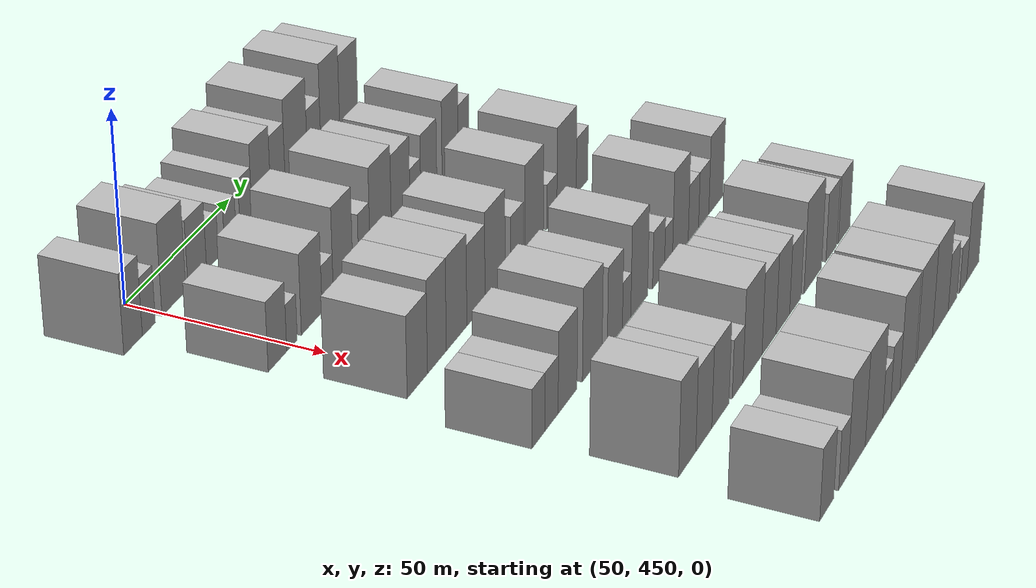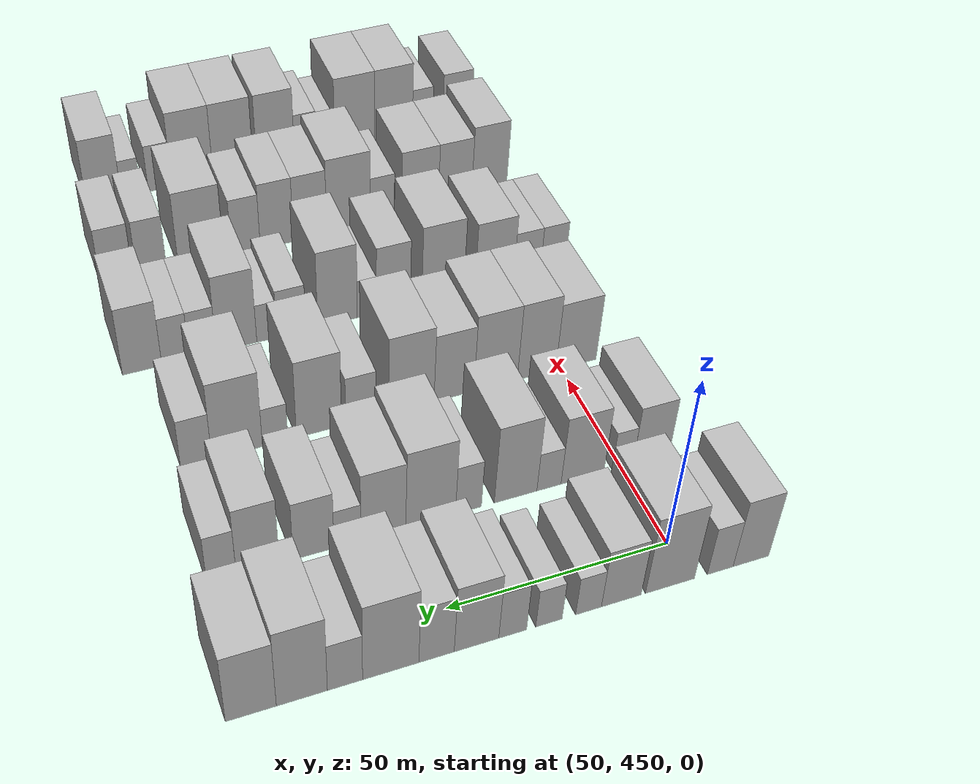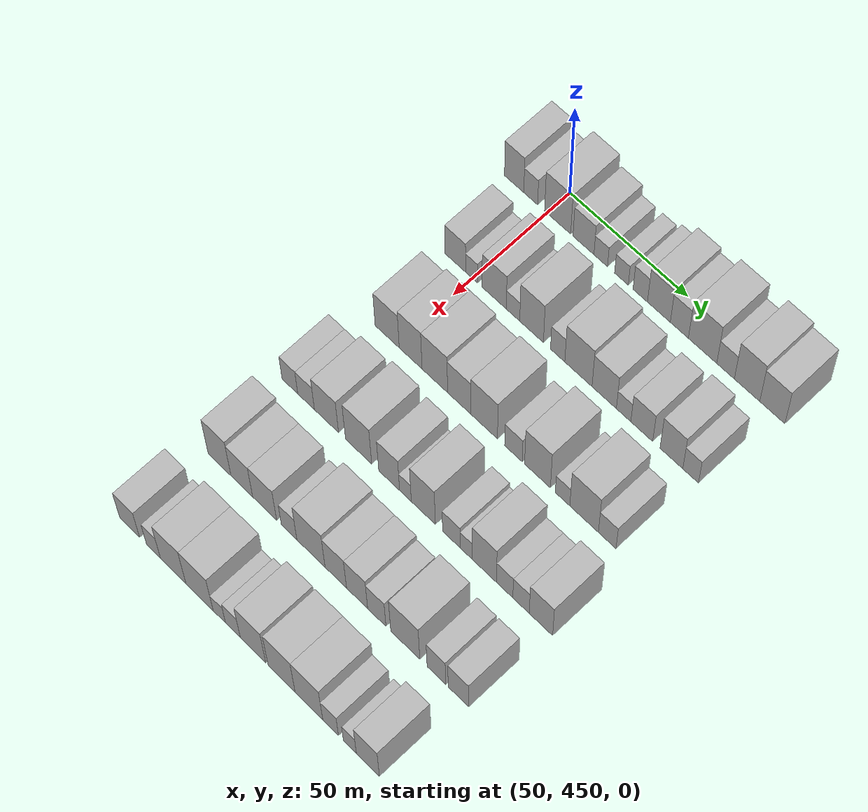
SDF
<sdf version="1.6">
 <world name="default">
  <model name="building_107">
   <static>1</static>
   <pose>50.0000 435.6473 0 0.000000 0.000000 0.000000</pose>
   <link name="link">
    <pose>0 0 10.50 0 0 0</pose>
    <collision name="collision"><geometry><box><size>20.0000 8.4114 21.0000</size></box></geometry></collision>
    <visual name="visual">
     <cast_shadows>0</cast_shadows>
     <geometry><box><size>20.0000 8.4114 21.0000</size></box></geometry>
     <material>
      <script>
       <uri>model://HANNAS_wall/materials/scripts</uri>
       <uri>model://HANNAS_wall/materials/textures</uri>
       <name>vrc/HANNAS_wall</name>
      </script>
     </material>
    </visual>
   </link>
  </model>
  <model name="building_108">
   <static>1</static>
   <pose>50.0000 442.8544 0 0.000000 0.000000 0.000000</pose>
   <link name="link">
    <pose>0 0 7.50 0 0 0</pose>
    <collision name="collision"><geometry><box><size>20.0000 6.0029 15.0000</size></box></geometry></collision>
    <visual name="visual">
     <cast_shadows>0</cast_shadows>
     <geometry><box><size>20.0000 6.0029 15.0000</size></box></geometry>
     <material>
      <script>
       <uri>model://HANNAS_wall/materials/scripts</uri>
       <uri>model://HANNAS_wall/materials/textures</uri>
       <name>vrc/HANNAS_wall</name>
      </script>
     </material>
    </visual>
   </link>
  </model>
  <model name="building_109">
   <static>1</static>
   <pose>50.0000 454.4763 0 0.000000 0.000000 0.000000</pose>
   <link name="link">
    <pose>0 0 12.00 0 0 0</pose>
    <collision name="collision"><geometry><box><size>20.0000 11.2409 24.0000</size></box></geometry></collision>
    <visual name="visual">
     <cast_shadows>0</cast_shadows>
     <geometry><box><size>20.0000 11.2409 24.0000</size></box></geometry>
     <material>
      <script>
       <uri>model://HANNAS_wall/materials/scripts</uri>
       <uri>model://HANNAS_wall/materials/textures</uri>
       <name>vrc/HANNAS_wall</name>
      </script>
     </material>
    </visual>
   </link>
  </model>
  <model name="building_110">
   <static>1</static>
   <pose>50.0000 465.5707 0 0.000000 0.000000 0.000000</pose>
   <link name="link">
    <pose>0 0 9.00 0 0 0</pose>
    <collision name="collision"><geometry><box><size>20.0000 8.9480 18.0000</size></box></geometry></collision>
    <visual name="visual">
     <cast_shadows>0</cast_shadows>
     <geometry><box><size>20.0000 8.9480 18.0000</size></box></geometry>
     <material>
      <script>
       <uri>model://HANNAS_wall/materials/scripts</uri>
       <uri>model://HANNAS_wall/materials/textures</uri>
       <name>vrc/HANNAS_wall</name>
      </script>
     </material>
    </visual>
   </link>
  </model>
  <model name="building_111">
   <static>1</static>
   <pose>50.0000 472.9303 0 0.000000 0.000000 0.000000</pose>
   <link name="link">
    <pose>0 0 6.00 0 0 0</pose>
    <collision name="collision"><geometry><box><size>20.0000 5.7711 12.0000</size></box></geometry></collision>
    <visual name="visual">
     <cast_shadows>0</cast_shadows>
     <geometry><box><size>20.0000 5.7711 12.0000</size></box></geometry>
     <material>
      <script>
       <uri>model://HANNAS_wall/materials/scripts</uri>
       <uri>model://HANNAS_wall/materials/textures</uri>
       <name>vrc/HANNAS_wall</name>
      </script>
     </material>
    </visual>
   </link>
  </model>
  <model name="building_112">
   <static>1</static>
   <pose>50.0000 481.7112 0 0.000000 0.000000 0.000000</pose>
   <link name="link">
    <pose>0 0 6.00 0 0 0</pose>
    <collision name="collision"><geometry><box><size>20.0000 5.7907 12.0000</size></box></geometry></collision>
    <visual name="visual">
     <cast_shadows>0</cast_shadows>
     <geometry><box><size>20.0000 5.7907 12.0000</size></box></geometry>
     <material>
      <script>
       <uri>model://HANNAS_wall/materials/scripts</uri>
       <uri>model://HANNAS_wall/materials/textures</uri>
       <name>vrc/HANNAS_wall</name>
      </script>
     </material>
    </visual>
   </link>
  </model>
  <model name="building_113">
   <static>1</static>
   <pose>50.0000 489.6312 0 0.000000 0.000000 0.000000</pose>
   <link name="link">
    <pose>0 0 7.50 0 0 0</pose>
    <collision name="collision"><geometry><box><size>20.0000 6.0494 15.0000</size></box></geometry></collision>
    <visual name="visual">
     <cast_shadows>0</cast_shadows>
     <geometry><box><size>20.0000 6.0494 15.0000</size></box></geometry>
     <material>
      <script>
       <uri>model://HANNAS_wall/materials/scripts</uri>
       <uri>model://HANNAS_wall/materials/textures</uri>
       <name>vrc/HANNAS_wall</name>
      </script>
     </material>
    </visual>
   </link>
  </model>
  <model name="building_114">
   <static>1</static>
   <pose>50.0000 497.4347 0 0.000000 0.000000 0.000000</pose>
   <link name="link">
    <pose>0 0 10.50 0 0 0</pose>
    <collision name="collision"><geometry><box><size>20.0000 9.5577 21.0000</size></box></geometry></collision>
    <visual name="visual">
     <cast_shadows>0</cast_shadows>
     <geometry><box><size>20.0000 9.5577 21.0000</size></box></geometry>
     <material>
      <script>
       <uri>model://HANNAS_wall/materials/scripts</uri>
       <uri>model://HANNAS_wall/materials/textures</uri>
       <name>vrc/HANNAS_wall</name>
      </script>
     </material>
    </visual>
   </link>
  </model>
  <model name="building_115">
   <static>1</static>
   <pose>50.0000 505.9645 0 0.000000 0.000000 0.000000</pose>
   <link name="link">
    <pose>0 0 9.00 0 0 0</pose>
    <collision name="collision"><geometry><box><size>20.0000 7.5018 18.0000</size></box></geometry></collision>
    <visual name="visual">
     <cast_shadows>0</cast_shadows>
     <geometry><box><size>20.0000 7.5018 18.0000</size></box></geometry>
     <material>
      <script>
       <uri>model://HANNAS_wall/materials/scripts</uri>
       <uri>model://HANNAS_wall/materials/textures</uri>
       <name>vrc/HANNAS_wall</name>
      </script>
     </material>
    </visual>
   </link>
  </model>
  <model name="building_116">
   <static>1</static>
   <pose>50.0000 515.5728 0 0.000000 0.000000 0.000000</pose>
   <link name="link">
    <pose>0 0 12.00 0 0 0</pose>
    <collision name="collision"><geometry><box><size>20.0000 11.7149 24.0000</size></box></geometry></collision>
    <visual name="visual">
     <cast_shadows>0</cast_shadows>
     <geometry><box><size>20.0000 11.7149 24.0000</size></box></geometry>
     <material>
      <script>
       <uri>model://HANNAS_wall/materials/scripts</uri>
       <uri>model://HANNAS_wall/materials/textures</uri>
       <name>vrc/HANNAS_wall</name>
      </script>
     </material>
    </visual>
   </link>
  </model>
  <model name="building_117">
   <static>1</static>
   <pose>50.0000 525.0377 0 0.000000 0.000000 0.000000</pose>
   <link name="link">
    <pose>0 0 7.50 0 0 0</pose>
    <collision name="collision"><geometry><box><size>20.0000 7.2148 15.0000</size></box></geometry></collision>
    <visual name="visual">
     <cast_shadows>0</cast_shadows>
     <geometry><box><size>20.0000 7.2148 15.0000</size></box></geometry>
     <material>
      <script>
       <uri>model://HANNAS_wall/materials/scripts</uri>
       <uri>model://HANNAS_wall/materials/textures</uri>
       <name>vrc/HANNAS_wall</name>
      </script>
     </material>
    </visual>
   </link>
  </model>
  <model name="building_118">
   <static>1</static>
   <pose>50.0000 533.8089 0 0.000000 0.000000 0.000000</pose>
   <link name="link">
    <pose>0 0 12.00 0 0 0</pose>
    <collision name="collision"><geometry><box><size>20.0000 10.3277 24.0000</size></box></geometry></collision>
    <visual name="visual">
     <cast_shadows>0</cast_shadows>
     <geometry><box><size>20.0000 10.3277 24.0000</size></box></geometry>
     <material>
      <script>
       <uri>model://HANNAS_wall/materials/scripts</uri>
       <uri>model://HANNAS_wall/materials/textures</uri>
       <name>vrc/HANNAS_wall</name>
      </script>
     </material>
    </visual>
   </link>
  </model>
  <model name="building_119">
   <static>1</static>
   <pose>50.0000 544.0579 0 0.000000 0.000000 0.000000</pose>
   <link name="link">
    <pose>0 0 10.50 0 0 0</pose>
    <collision name="collision"><geometry><box><size>20.0000 10.1703 21.0000</size></box></geometry></collision>
    <visual name="visual">
     <cast_shadows>0</cast_shadows>
     <geometry><box><size>20.0000 10.1703 21.0000</size></box></geometry>
     <material>
      <script>
       <uri>model://HANNAS_wall/materials/scripts</uri>
       <uri>model://HANNAS_wall/materials/textures</uri>
       <name>vrc/HANNAS_wall</name>
      </script>
     </material>
    </visual>
   </link>
  </model>
  <model name="building_231">
   <static>1</static>
   <pose>82.0000 442.5906 0 0.000000 0.000000 0.000000</pose>
   <link name="link">
    <pose>0 0 9.00 0 0 0</pose>
    <collision name="collision"><geometry><box><size>20.0000 8.9357 18.0000</size></box></geometry></collision>
    <visual name="visual">
     <cast_shadows>0</cast_shadows>
     <geometry><box><size>20.0000 8.9357 18.0000</size></box></geometry>
     <material>
      <script>
       <uri>model://HANNAS_wall/materials/scripts</uri>
       <uri>model://HANNAS_wall/materials/textures</uri>
       <name>vrc/HANNAS_wall</name>
      </script>
     </material>
    </visual>
   </link>
  </model>
  <model name="building_232">
   <static>1</static>
   <pose>82.0000 449.6217 0 0.000000 0.000000 0.000000</pose>
   <link name="link">
    <pose>0 0 6.00 0 0 0</pose>
    <collision name="collision"><geometry><box><size>20.0000 5.1264 12.0000</size></box></geometry></collision>
    <visual name="visual">
     <cast_shadows>0</cast_shadows>
     <geometry><box><size>20.0000 5.1264 12.0000</size></box></geometry>
     <material>
      <script>
       <uri>model://HANNAS_wall/materials/scripts</uri>
       <uri>model://HANNAS_wall/materials/textures</uri>
       <name>vrc/HANNAS_wall</name>
      </script>
     </material>
    </visual>
   </link>
  </model>
  <model name="building_233">
   <static>1</static>
   <pose>82.0000 459.3549 0 0.000000 0.000000 0.000000</pose>
   <link name="link">
    <pose>0 0 10.50 0 0 0</pose>
    <collision name="collision"><geometry><box><size>20.0000 10.3401 21.0000</size></box></geometry></collision>
    <visual name="visual">
     <cast_shadows>0</cast_shadows>
     <geometry><box><size>20.0000 10.3401 21.0000</size></box></geometry>
     <material>
      <script>
       <uri>model://HANNAS_wall/materials/scripts</uri>
       <uri>model://HANNAS_wall/materials/textures</uri>
       <name>vrc/HANNAS_wall</name>
      </script>
     </material>
    </visual>
   </link>
  </model>
  <model name="building_234">
   <static>1</static>
   <pose>82.0000 467.3938 0 0.000000 0.000000 0.000000</pose>
   <link name="link">
    <pose>0 0 6.00 0 0 0</pose>
    <collision name="collision"><geometry><box><size>20.0000 5.7378 12.0000</size></box></geometry></collision>
    <visual name="visual">
     <cast_shadows>0</cast_shadows>
     <geometry><box><size>20.0000 5.7378 12.0000</size></box></geometry>
     <material>
      <script>
       <uri>model://HANNAS_wall/materials/scripts</uri>
       <uri>model://HANNAS_wall/materials/textures</uri>
       <name>vrc/HANNAS_wall</name>
      </script>
     </material>
    </visual>
   </link>
  </model>
  <model name="building_235">
   <static>1</static>
   <pose>82.0000 475.2846 0 0.000000 0.000000 0.000000</pose>
   <link name="link">
    <pose>0 0 12.00 0 0 0</pose>
    <collision name="collision"><geometry><box><size>20.0000 10.0438 24.0000</size></box></geometry></collision>
    <visual name="visual">
     <cast_shadows>0</cast_shadows>
     <geometry><box><size>20.0000 10.0438 24.0000</size></box></geometry>
     <material>
      <script>
       <uri>model://HANNAS_wall/materials/scripts</uri>
       <uri>model://HANNAS_wall/materials/textures</uri>
       <name>vrc/HANNAS_wall</name>
      </script>
     </material>
    </visual>
   </link>
  </model>
  <model name="building_236">
   <static>1</static>
   <pose>82.0000 486.3159 0 0.000000 0.000000 0.000000</pose>
   <link name="link">
    <pose>0 0 7.50 0 0 0</pose>
    <collision name="collision"><geometry><box><size>20.0000 6.0187 15.0000</size></box></geometry></collision>
    <visual name="visual">
     <cast_shadows>0</cast_shadows>
     <geometry><box><size>20.0000 6.0187 15.0000</size></box></geometry>
     <material>
      <script>
       <uri>model://HANNAS_wall/materials/scripts</uri>
       <uri>model://HANNAS_wall/materials/textures</uri>
       <name>vrc/HANNAS_wall</name>
      </script>
     </material>
    </visual>
   </link>
  </model>
  <model name="building_237">
   <static>1</static>
   <pose>82.0000 495.0230 0 0.000000 0.000000 0.000000</pose>
   <link name="link">
    <pose>0 0 12.00 0 0 0</pose>
    <collision name="collision"><geometry><box><size>20.0000 11.3955 24.0000</size></box></geometry></collision>
    <visual name="visual">
     <cast_shadows>0</cast_shadows>
     <geometry><box><size>20.0000 11.3955 24.0000</size></box></geometry>
     <material>
      <script>
       <uri>model://HANNAS_wall/materials/scripts</uri>
       <uri>model://HANNAS_wall/materials/textures</uri>
       <name>vrc/HANNAS_wall</name>
      </script>
     </material>
    </visual>
   </link>
  </model>
  <model name="building_238">
   <static>1</static>
   <pose>82.0000 505.7731 0 0.000000 0.000000 0.000000</pose>
   <link name="link">
    <pose>0 0 10.50 0 0 0</pose>
    <collision name="collision"><geometry><box><size>20.0000 10.1045 21.0000</size></box></geometry></collision>
    <visual name="visual">
     <cast_shadows>0</cast_shadows>
     <geometry><box><size>20.0000 10.1045 21.0000</size></box></geometry>
     <material>
      <script>
       <uri>model://HANNAS_wall/materials/scripts</uri>
       <uri>model://HANNAS_wall/materials/textures</uri>
       <name>vrc/HANNAS_wall</name>
      </script>
     </material>
    </visual>
   </link>
  </model>
  <model name="building_239">
   <static>1</static>
   <pose>82.0000 513.8068 0 0.000000 0.000000 0.000000</pose>
   <link name="link">
    <pose>0 0 6.00 0 0 0</pose>
    <collision name="collision"><geometry><box><size>20.0000 5.9629 12.0000</size></box></geometry></collision>
    <visual name="visual">
     <cast_shadows>0</cast_shadows>
     <geometry><box><size>20.0000 5.9629 12.0000</size></box></geometry>
     <material>
      <script>
       <uri>model://HANNAS_wall/materials/scripts</uri>
       <uri>model://HANNAS_wall/materials/textures</uri>
       <name>vrc/HANNAS_wall</name>
      </script>
     </material>
    </visual>
   </link>
  </model>
  <model name="building_240">
   <static>1</static>
   <pose>82.0000 521.2770 0 0.000000 0.000000 0.000000</pose>
   <link name="link">
    <pose>0 0 9.00 0 0 0</pose>
    <collision name="collision"><geometry><box><size>20.0000 8.9775 18.0000</size></box></geometry></collision>
    <visual name="visual">
     <cast_shadows>0</cast_shadows>
     <geometry><box><size>20.0000 8.9775 18.0000</size></box></geometry>
     <material>
      <script>
       <uri>model://HANNAS_wall/materials/scripts</uri>
       <uri>model://HANNAS_wall/materials/textures</uri>
       <name>vrc/HANNAS_wall</name>
      </script>
     </material>
    </visual>
   </link>
  </model>
  <model name="building_241">
   <static>1</static>
   <pose>82.0000 533.4039 0 0.000000 0.000000 0.000000</pose>
   <link name="link">
    <pose>0 0 10.50 0 0 0</pose>
    <collision name="collision"><geometry><box><size>20.0000 9.2765 21.0000</size></box></geometry></collision>
    <visual name="visual">
     <cast_shadows>0</cast_shadows>
     <geometry><box><size>20.0000 9.2765 21.0000</size></box></geometry>
     <material>
      <script>
       <uri>model://HANNAS_wall/materials/scripts</uri>
       <uri>model://HANNAS_wall/materials/textures</uri>
       <name>vrc/HANNAS_wall</name>
      </script>
     </material>
    </visual>
   </link>
  </model>
  <model name="building_242">
   <static>1</static>
   <pose>82.0000 541.2153 0 0.000000 0.000000 0.000000</pose>
   <link name="link">
    <pose>0 0 7.50 0 0 0</pose>
    <collision name="collision"><geometry><box><size>20.0000 6.3463 15.0000</size></box></geometry></collision>
    <visual name="visual">
     <cast_shadows>0</cast_shadows>
     <geometry><box><size>20.0000 6.3463 15.0000</size></box></geometry>
     <material>
      <script>
       <uri>model://HANNAS_wall/materials/scripts</uri>
       <uri>model://HANNAS_wall/materials/textures</uri>
       <name>vrc/HANNAS_wall</name>
      </script>
     </material>
    </visual>
   </link>
  </model>
  <model name="building_348">
   <static>1</static>
   <pose>114.0000 446.1268 0 0.000000 0.000000 0.000000</pose>
   <link name="link">
    <pose>0 0 10.50 0 0 0</pose>
    <collision name="collision"><geometry><box><size>20.0000 10.4220 21.0000</size></box></geometry></collision>
    <visual name="visual">
     <cast_shadows>0</cast_shadows>
     <geometry><box><size>20.0000 10.4220 21.0000</size></box></geometry>
     <material>
      <script>
       <uri>model://HANNAS_wall/materials/scripts</uri>
       <uri>model://HANNAS_wall/materials/textures</uri>
       <name>vrc/HANNAS_wall</name>
      </script>
     </material>
    </visual>
   </link>
  </model>
  <model name="building_349">
   <static>1</static>
   <pose>114.0000 456.2554 0 0.000000 0.000000 0.000000</pose>
   <link name="link">
    <pose>0 0 12.00 0 0 0</pose>
    <collision name="collision"><geometry><box><size>20.0000 9.8350 24.0000</size></box></geometry></collision>
    <visual name="visual">
     <cast_shadows>0</cast_shadows>
     <geometry><box><size>20.0000 9.8350 24.0000</size></box></geometry>
     <material>
      <script>
       <uri>model://HANNAS_wall/materials/scripts</uri>
       <uri>model://HANNAS_wall/materials/textures</uri>
       <name>vrc/HANNAS_wall</name>
      </script>
     </material>
    </visual>
   </link>
  </model>
  <model name="building_350">
   <static>1</static>
   <pose>114.0000 466.6408 0 0.000000 0.000000 0.000000</pose>
   <link name="link">
    <pose>0 0 12.00 0 0 0</pose>
    <collision name="collision"><geometry><box><size>20.0000 10.9359 24.0000</size></box></geometry></collision>
    <visual name="visual">
     <cast_shadows>0</cast_shadows>
     <geometry><box><size>20.0000 10.9359 24.0000</size></box></geometry>
     <material>
      <script>
       <uri>model://HANNAS_wall/materials/scripts</uri>
       <uri>model://HANNAS_wall/materials/textures</uri>
       <name>vrc/HANNAS_wall</name>
      </script>
     </material>
    </visual>
   </link>
  </model>
  <model name="building_351">
   <static>1</static>
   <pose>114.0000 477.0550 0 0.000000 0.000000 0.000000</pose>
   <link name="link">
    <pose>0 0 10.50 0 0 0</pose>
    <collision name="collision"><geometry><box><size>20.0000 9.8924 21.0000</size></box></geometry></collision>
    <visual name="visual">
     <cast_shadows>0</cast_shadows>
     <geometry><box><size>20.0000 9.8924 21.0000</size></box></geometry>
     <material>
      <script>
       <uri>model://HANNAS_wall/materials/scripts</uri>
       <uri>model://HANNAS_wall/materials/textures</uri>
       <name>vrc/HANNAS_wall</name>
      </script>
     </material>
    </visual>
   </link>
  </model>
  <model name="building_352">
   <static>1</static>
   <pose>114.0000 487.5782 0 0.000000 0.000000 0.000000</pose>
   <link name="link">
    <pose>0 0 12.00 0 0 0</pose>
    <collision name="collision"><geometry><box><size>20.0000 11.1540 24.0000</size></box></geometry></collision>
    <visual name="visual">
     <cast_shadows>0</cast_shadows>
     <geometry><box><size>20.0000 11.1540 24.0000</size></box></geometry>
     <material>
      <script>
       <uri>model://HANNAS_wall/materials/scripts</uri>
       <uri>model://HANNAS_wall/materials/textures</uri>
       <name>vrc/HANNAS_wall</name>
      </script>
     </material>
    </visual>
   </link>
  </model>
  <model name="building_353">
   <static>1</static>
   <pose>114.0000 499.8116 0 0.000000 0.000000 0.000000</pose>
   <link name="link">
    <pose>0 0 7.50 0 0 0</pose>
    <collision name="collision"><geometry><box><size>20.0000 7.3128 15.0000</size></box></geometry></collision>
    <visual name="visual">
     <cast_shadows>0</cast_shadows>
     <geometry><box><size>20.0000 7.3128 15.0000</size></box></geometry>
     <material>
      <script>
       <uri>model://HANNAS_wall/materials/scripts</uri>
       <uri>model://HANNAS_wall/materials/textures</uri>
       <name>vrc/HANNAS_wall</name>
      </script>
     </material>
    </visual>
   </link>
  </model>
  <model name="building_354">
   <static>1</static>
   <pose>114.0000 509.8120 0 0.000000 0.000000 0.000000</pose>
   <link name="link">
    <pose>0 0 12.00 0 0 0</pose>
    <collision name="collision"><geometry><box><size>20.0000 10.6881 24.0000</size></box></geometry></collision>
    <visual name="visual">
     <cast_shadows>0</cast_shadows>
     <geometry><box><size>20.0000 10.6881 24.0000</size></box></geometry>
     <material>
      <script>
       <uri>model://HANNAS_wall/materials/scripts</uri>
       <uri>model://HANNAS_wall/materials/textures</uri>
       <name>vrc/HANNAS_wall</name>
      </script>
     </material>
    </visual>
   </link>
  </model>
  <model name="building_355">
   <static>1</static>
   <pose>114.0000 520.1343 0 0.000000 0.000000 0.000000</pose>
   <link name="link">
    <pose>0 0 6.00 0 0 0</pose>
    <collision name="collision"><geometry><box><size>20.0000 5.9564 12.0000</size></box></geometry></collision>
    <visual name="visual">
     <cast_shadows>0</cast_shadows>
     <geometry><box><size>20.0000 5.9564 12.0000</size></box></geometry>
     <material>
      <script>
       <uri>model://HANNAS_wall/materials/scripts</uri>
       <uri>model://HANNAS_wall/materials/textures</uri>
       <name>vrc/HANNAS_wall</name>
      </script>
     </material>
    </visual>
   </link>
  </model>
  <model name="building_356">
   <static>1</static>
   <pose>114.0000 528.9501 0 0.000000 0.000000 0.000000</pose>
   <link name="link">
    <pose>0 0 12.00 0 0 0</pose>
    <collision name="collision"><geometry><box><size>20.0000 11.6752 24.0000</size></box></geometry></collision>
    <visual name="visual">
     <cast_shadows>0</cast_shadows>
     <geometry><box><size>20.0000 11.6752 24.0000</size></box></geometry>
     <material>
      <script>
       <uri>model://HANNAS_wall/materials/scripts</uri>
       <uri>model://HANNAS_wall/materials/textures</uri>
       <name>vrc/HANNAS_wall</name>
      </script>
     </material>
    </visual>
   </link>
  </model>
  <model name="building_357">
   <static>1</static>
   <pose>114.0000 538.3609 0 0.000000 0.000000 0.000000</pose>
   <link name="link">
    <pose>0 0 7.50 0 0 0</pose>
    <collision name="collision"><geometry><box><size>20.0000 7.1465 15.0000</size></box></geometry></collision>
    <visual name="visual">
     <cast_shadows>0</cast_shadows>
     <geometry><box><size>20.0000 7.1465 15.0000</size></box></geometry>
     <material>
      <script>
       <uri>model://HANNAS_wall/materials/scripts</uri>
       <uri>model://HANNAS_wall/materials/textures</uri>
       <name>vrc/HANNAS_wall</name>
      </script>
     </material>
    </visual>
   </link>
  </model>
  <model name="building_467">
   <static>1</static>
   <pose>146.0000 437.7740 0 0.000000 0.000000 0.000000</pose>
   <link name="link">
    <pose>0 0 7.50 0 0 0</pose>
    <collision name="collision"><geometry><box><size>20.0000 6.8174 15.0000</size></box></geometry></collision>
    <visual name="visual">
     <cast_shadows>0</cast_shadows>
     <geometry><box><size>20.0000 6.8174 15.0000</size></box></geometry>
     <material>
      <script>
       <uri>model://HANNAS_wall/materials/scripts</uri>
       <uri>model://HANNAS_wall/materials/textures</uri>
       <name>vrc/HANNAS_wall</name>
      </script>
     </material>
    </visual>
   </link>
  </model>
  <model name="building_468">
   <static>1</static>
   <pose>146.0000 444.8144 0 0.000000 0.000000 0.000000</pose>
   <link name="link">
    <pose>0 0 7.50 0 0 0</pose>
    <collision name="collision"><geometry><box><size>20.0000 7.2633 15.0000</size></box></geometry></collision>
    <visual name="visual">
     <cast_shadows>0</cast_shadows>
     <geometry><box><size>20.0000 7.2633 15.0000</size></box></geometry>
     <material>
      <script>
       <uri>model://HANNAS_wall/materials/scripts</uri>
       <uri>model://HANNAS_wall/materials/textures</uri>
       <name>vrc/HANNAS_wall</name>
      </script>
     </material>
    </visual>
   </link>
  </model>
  <model name="building_469">
   <static>1</static>
   <pose>146.0000 453.6584 0 0.000000 0.000000 0.000000</pose>
   <link name="link">
    <pose>0 0 10.50 0 0 0</pose>
    <collision name="collision"><geometry><box><size>20.0000 10.4247 21.0000</size></box></geometry></collision>
    <visual name="visual">
     <cast_shadows>0</cast_shadows>
     <geometry><box><size>20.0000 10.4247 21.0000</size></box></geometry>
     <material>
      <script>
       <uri>model://HANNAS_wall/materials/scripts</uri>
       <uri>model://HANNAS_wall/materials/textures</uri>
       <name>vrc/HANNAS_wall</name>
      </script>
     </material>
    </visual>
   </link>
  </model>
  <model name="building_470">
   <static>1</static>
   <pose>146.0000 467.4567 0 0.000000 0.000000 0.000000</pose>
   <link name="link">
    <pose>0 0 12.00 0 0 0</pose>
    <collision name="collision"><geometry><box><size>20.0000 11.1719 24.0000</size></box></geometry></collision>
    <visual name="visual">
     <cast_shadows>0</cast_shadows>
     <geometry><box><size>20.0000 11.1719 24.0000</size></box></geometry>
     <material>
      <script>
       <uri>model://HANNAS_wall/materials/scripts</uri>
       <uri>model://HANNAS_wall/materials/textures</uri>
       <name>vrc/HANNAS_wall</name>
      </script>
     </material>
    </visual>
   </link>
  </model>
  <model name="building_471">
   <static>1</static>
   <pose>146.0000 480.4546 0 0.000000 0.000000 0.000000</pose>
   <link name="link">
    <pose>0 0 10.50 0 0 0</pose>
    <collision name="collision"><geometry><box><size>20.0000 8.8241 21.0000</size></box></geometry></collision>
    <visual name="visual">
     <cast_shadows>0</cast_shadows>
     <geometry><box><size>20.0000 8.8241 21.0000</size></box></geometry>
     <material>
      <script>
       <uri>model://HANNAS_wall/materials/scripts</uri>
       <uri>model://HANNAS_wall/materials/textures</uri>
       <name>vrc/HANNAS_wall</name>
      </script>
     </material>
    </visual>
   </link>
  </model>
  <model name="building_472">
   <static>1</static>
   <pose>146.0000 487.3275 0 0.000000 0.000000 0.000000</pose>
   <link name="link">
    <pose>0 0 6.00 0 0 0</pose>
    <collision name="collision"><geometry><box><size>20.0000 4.9217 12.0000</size></box></geometry></collision>
    <visual name="visual">
     <cast_shadows>0</cast_shadows>
     <geometry><box><size>20.0000 4.9217 12.0000</size></box></geometry>
     <material>
      <script>
       <uri>model://HANNAS_wall/materials/scripts</uri>
       <uri>model://HANNAS_wall/materials/textures</uri>
       <name>vrc/HANNAS_wall</name>
      </script>
     </material>
    </visual>
   </link>
  </model>
  <model name="building_473">
   <static>1</static>
   <pose>146.0000 494.8470 0 0.000000 0.000000 0.000000</pose>
   <link name="link">
    <pose>0 0 12.00 0 0 0</pose>
    <collision name="collision"><geometry><box><size>20.0000 10.1172 24.0000</size></box></geometry></collision>
    <visual name="visual">
     <cast_shadows>0</cast_shadows>
     <geometry><box><size>20.0000 10.1172 24.0000</size></box></geometry>
     <material>
      <script>
       <uri>model://HANNAS_wall/materials/scripts</uri>
       <uri>model://HANNAS_wall/materials/textures</uri>
       <name>vrc/HANNAS_wall</name>
      </script>
     </material>
    </visual>
   </link>
  </model>
  <model name="building_474">
   <static>1</static>
   <pose>146.0000 506.5679 0 0.000000 0.000000 0.000000</pose>
   <link name="link">
    <pose>0 0 7.50 0 0 0</pose>
    <collision name="collision"><geometry><box><size>20.0000 7.3247 15.0000</size></box></geometry></collision>
    <visual name="visual">
     <cast_shadows>0</cast_shadows>
     <geometry><box><size>20.0000 7.3247 15.0000</size></box></geometry>
     <material>
      <script>
       <uri>model://HANNAS_wall/materials/scripts</uri>
       <uri>model://HANNAS_wall/materials/textures</uri>
       <name>vrc/HANNAS_wall</name>
      </script>
     </material>
    </visual>
   </link>
  </model>
  <model name="building_475">
   <static>1</static>
   <pose>146.0000 512.7161 0 0.000000 0.000000 0.000000</pose>
   <link name="link">
    <pose>0 0 6.00 0 0 0</pose>
    <collision name="collision"><geometry><box><size>20.0000 4.9717 12.0000</size></box></geometry></collision>
    <visual name="visual">
     <cast_shadows>0</cast_shadows>
     <geometry><box><size>20.0000 4.9717 12.0000</size></box></geometry>
     <material>
      <script>
       <uri>model://HANNAS_wall/materials/scripts</uri>
       <uri>model://HANNAS_wall/materials/textures</uri>
       <name>vrc/HANNAS_wall</name>
      </script>
     </material>
    </visual>
   </link>
  </model>
  <model name="building_476">
   <static>1</static>
   <pose>146.0000 520.1888 0 0.000000 0.000000 0.000000</pose>
   <link name="link">
    <pose>0 0 12.00 0 0 0</pose>
    <collision name="collision"><geometry><box><size>20.0000 9.9736 24.0000</size></box></geometry></collision>
    <visual name="visual">
     <cast_shadows>0</cast_shadows>
     <geometry><box><size>20.0000 9.9736 24.0000</size></box></geometry>
     <material>
      <script>
       <uri>model://HANNAS_wall/materials/scripts</uri>
       <uri>model://HANNAS_wall/materials/textures</uri>
       <name>vrc/HANNAS_wall</name>
      </script>
     </material>
    </visual>
   </link>
  </model>
  <model name="building_477">
   <static>1</static>
   <pose>146.0000 528.4988 0 0.000000 0.000000 0.000000</pose>
   <link name="link">
    <pose>0 0 7.50 0 0 0</pose>
    <collision name="collision"><geometry><box><size>20.0000 6.6463 15.0000</size></box></geometry></collision>
    <visual name="visual">
     <cast_shadows>0</cast_shadows>
     <geometry><box><size>20.0000 6.6463 15.0000</size></box></geometry>
     <material>
      <script>
       <uri>model://HANNAS_wall/materials/scripts</uri>
       <uri>model://HANNAS_wall/materials/textures</uri>
       <name>vrc/HANNAS_wall</name>
      </script>
     </material>
    </visual>
   </link>
  </model>
  <model name="building_478">
   <static>1</static>
   <pose>146.0000 535.1483 0 0.000000 0.000000 0.000000</pose>
   <link name="link">
    <pose>0 0 7.50 0 0 0</pose>
    <collision name="collision"><geometry><box><size>20.0000 6.6526 15.0000</size></box></geometry></collision>
    <visual name="visual">
     <cast_shadows>0</cast_shadows>
     <geometry><box><size>20.0000 6.6526 15.0000</size></box></geometry>
     <material>
      <script>
       <uri>model://HANNAS_wall/materials/scripts</uri>
       <uri>model://HANNAS_wall/materials/textures</uri>
       <name>vrc/HANNAS_wall</name>
      </script>
     </material>
    </visual>
   </link>
  </model>
  <model name="building_479">
   <static>1</static>
   <pose>146.0000 543.2105 0 0.000000 0.000000 0.000000</pose>
   <link name="link">
    <pose>0 0 10.50 0 0 0</pose>
    <collision name="collision"><geometry><box><size>20.0000 9.4719 21.0000</size></box></geometry></collision>
    <visual name="visual">
     <cast_shadows>0</cast_shadows>
     <geometry><box><size>20.0000 9.4719 21.0000</size></box></geometry>
     <material>
      <script>
       <uri>model://HANNAS_wall/materials/scripts</uri>
       <uri>model://HANNAS_wall/materials/textures</uri>
       <name>vrc/HANNAS_wall</name>
      </script>
     </material>
    </visual>
   </link>
  </model>
  <model name="building_584">
   <static>1</static>
   <pose>178.0000 441.9637 0 0.000000 0.000000 0.000000</pose>
   <link name="link">
    <pose>0 0 12.00 0 0 0</pose>
    <collision name="collision"><geometry><box><size>20.0000 9.9527 24.0000</size></box></geometry></collision>
    <visual name="visual">
     <cast_shadows>0</cast_shadows>
     <geometry><box><size>20.0000 9.9527 24.0000</size></box></geometry>
     <material>
      <script>
       <uri>model://HANNAS_wall/materials/scripts</uri>
       <uri>model://HANNAS_wall/materials/textures</uri>
       <name>vrc/HANNAS_wall</name>
      </script>
     </material>
    </visual>
   </link>
  </model>
  <model name="building_585">
   <static>1</static>
   <pose>178.0000 451.6409 0 0.000000 0.000000 0.000000</pose>
   <link name="link">
    <pose>0 0 10.50 0 0 0</pose>
    <collision name="collision"><geometry><box><size>20.0000 9.4017 21.0000</size></box></geometry></collision>
    <visual name="visual">
     <cast_shadows>0</cast_shadows>
     <geometry><box><size>20.0000 9.4017 21.0000</size></box></geometry>
     <material>
      <script>
       <uri>model://HANNAS_wall/materials/scripts</uri>
       <uri>model://HANNAS_wall/materials/textures</uri>
       <name>vrc/HANNAS_wall</name>
      </script>
     </material>
    </visual>
   </link>
  </model>
  <model name="building_586">
   <static>1</static>
   <pose>178.0000 461.4997 0 0.000000 0.000000 0.000000</pose>
   <link name="link">
    <pose>0 0 10.50 0 0 0</pose>
    <collision name="collision"><geometry><box><size>20.0000 10.3159 21.0000</size></box></geometry></collision>
    <visual name="visual">
     <cast_shadows>0</cast_shadows>
     <geometry><box><size>20.0000 10.3159 21.0000</size></box></geometry>
     <material>
      <script>
       <uri>model://HANNAS_wall/materials/scripts</uri>
       <uri>model://HANNAS_wall/materials/textures</uri>
       <name>vrc/HANNAS_wall</name>
      </script>
     </material>
    </visual>
   </link>
  </model>
  <model name="building_587">
   <static>1</static>
   <pose>178.0000 471.9604 0 0.000000 0.000000 0.000000</pose>
   <link name="link">
    <pose>0 0 7.50 0 0 0</pose>
    <collision name="collision"><geometry><box><size>20.0000 6.6054 15.0000</size></box></geometry></collision>
    <visual name="visual">
     <cast_shadows>0</cast_shadows>
     <geometry><box><size>20.0000 6.6054 15.0000</size></box></geometry>
     <material>
      <script>
       <uri>model://HANNAS_wall/materials/scripts</uri>
       <uri>model://HANNAS_wall/materials/textures</uri>
       <name>vrc/HANNAS_wall</name>
      </script>
     </material>
    </visual>
   </link>
  </model>
  <model name="building_588">
   <static>1</static>
   <pose>178.0000 481.2336 0 0.000000 0.000000 0.000000</pose>
   <link name="link">
    <pose>0 0 12.00 0 0 0</pose>
    <collision name="collision"><geometry><box><size>20.0000 11.9412 24.0000</size></box></geometry></collision>
    <visual name="visual">
     <cast_shadows>0</cast_shadows>
     <geometry><box><size>20.0000 11.9412 24.0000</size></box></geometry>
     <material>
      <script>
       <uri>model://HANNAS_wall/materials/scripts</uri>
       <uri>model://HANNAS_wall/materials/textures</uri>
       <name>vrc/HANNAS_wall</name>
      </script>
     </material>
    </visual>
   </link>
  </model>
  <model name="building_589">
   <static>1</static>
   <pose>178.0000 491.7078 0 0.000000 0.000000 0.000000</pose>
   <link name="link">
    <pose>0 0 10.50 0 0 0</pose>
    <collision name="collision"><geometry><box><size>20.0000 9.0070 21.0000</size></box></geometry></collision>
    <visual name="visual">
     <cast_shadows>0</cast_shadows>
     <geometry><box><size>20.0000 9.0070 21.0000</size></box></geometry>
     <material>
      <script>
       <uri>model://HANNAS_wall/materials/scripts</uri>
       <uri>model://HANNAS_wall/materials/textures</uri>
       <name>vrc/HANNAS_wall</name>
      </script>
     </material>
    </visual>
   </link>
  </model>
  <model name="building_590">
   <static>1</static>
   <pose>178.0000 500.6161 0 0.000000 0.000000 0.000000</pose>
   <link name="link">
    <pose>0 0 10.50 0 0 0</pose>
    <collision name="collision"><geometry><box><size>20.0000 8.8095 21.0000</size></box></geometry></collision>
    <visual name="visual">
     <cast_shadows>0</cast_shadows>
     <geometry><box><size>20.0000 8.8095 21.0000</size></box></geometry>
     <material>
      <script>
       <uri>model://HANNAS_wall/materials/scripts</uri>
       <uri>model://HANNAS_wall/materials/textures</uri>
       <name>vrc/HANNAS_wall</name>
      </script>
     </material>
    </visual>
   </link>
  </model>
  <model name="building_591">
   <static>1</static>
   <pose>178.0000 508.8147 0 0.000000 0.000000 0.000000</pose>
   <link name="link">
    <pose>0 0 9.00 0 0 0</pose>
    <collision name="collision"><geometry><box><size>20.0000 7.5877 18.0000</size></box></geometry></collision>
    <visual name="visual">
     <cast_shadows>0</cast_shadows>
     <geometry><box><size>20.0000 7.5877 18.0000</size></box></geometry>
     <material>
      <script>
       <uri>model://HANNAS_wall/materials/scripts</uri>
       <uri>model://HANNAS_wall/materials/textures</uri>
       <name>vrc/HANNAS_wall</name>
      </script>
     </material>
    </visual>
   </link>
  </model>
  <model name="building_592">
   <static>1</static>
   <pose>178.0000 520.5667 0 0.000000 0.000000 0.000000</pose>
   <link name="link">
    <pose>0 0 12.00 0 0 0</pose>
    <collision name="collision"><geometry><box><size>20.0000 11.9163 24.0000</size></box></geometry></collision>
    <visual name="visual">
     <cast_shadows>0</cast_shadows>
     <geometry><box><size>20.0000 11.9163 24.0000</size></box></geometry>
     <material>
      <script>
       <uri>model://HANNAS_wall/materials/scripts</uri>
       <uri>model://HANNAS_wall/materials/textures</uri>
       <name>vrc/HANNAS_wall</name>
      </script>
     </material>
    </visual>
   </link>
  </model>
  <model name="building_593">
   <static>1</static>
   <pose>178.0000 533.3310 0 0.000000 0.000000 0.000000</pose>
   <link name="link">
    <pose>0 0 9.00 0 0 0</pose>
    <collision name="collision"><geometry><box><size>20.0000 7.6122 18.0000</size></box></geometry></collision>
    <visual name="visual">
     <cast_shadows>0</cast_shadows>
     <geometry><box><size>20.0000 7.6122 18.0000</size></box></geometry>
     <material>
      <script>
       <uri>model://HANNAS_wall/materials/scripts</uri>
       <uri>model://HANNAS_wall/materials/textures</uri>
       <name>vrc/HANNAS_wall</name>
      </script>
     </material>
    </visual>
   </link>
  </model>
  <model name="building_594">
   <static>1</static>
   <pose>178.0000 542.2867 0 0.000000 0.000000 0.000000</pose>
   <link name="link">
    <pose>0 0 9.00 0 0 0</pose>
    <collision name="collision"><geometry><box><size>20.0000 8.2992 18.0000</size></box></geometry></collision>
    <visual name="visual">
     <cast_shadows>0</cast_shadows>
     <geometry><box><size>20.0000 8.2992 18.0000</size></box></geometry>
     <material>
      <script>
       <uri>model://HANNAS_wall/materials/scripts</uri>
       <uri>model://HANNAS_wall/materials/textures</uri>
       <name>vrc/HANNAS_wall</name>
      </script>
     </material>
    </visual>
   </link>
  </model>
  <model name="building_698">
   <static>1</static>
   <pose>210.0000 438.4010 0 0.000000 0.000000 0.000000</pose>
   <link name="link">
    <pose>0 0 9.00 0 0 0</pose>
    <collision name="collision"><geometry><box><size>20.0000 8.7086 18.0000</size></box></geometry></collision>
    <visual name="visual">
     <cast_shadows>0</cast_shadows>
     <geometry><box><size>20.0000 8.7086 18.0000</size></box></geometry>
     <material>
      <script>
       <uri>model://HANNAS_wall/materials/scripts</uri>
       <uri>model://HANNAS_wall/materials/textures</uri>
       <name>vrc/HANNAS_wall</name>
      </script>
     </material>
    </visual>
   </link>
  </model>
  <model name="building_699">
   <static>1</static>
   <pose>210.0000 448.7747 0 0.000000 0.000000 0.000000</pose>
   <link name="link">
    <pose>0 0 7.50 0 0 0</pose>
    <collision name="collision"><geometry><box><size>20.0000 6.0387 15.0000</size></box></geometry></collision>
    <visual name="visual">
     <cast_shadows>0</cast_shadows>
     <geometry><box><size>20.0000 6.0387 15.0000</size></box></geometry>
     <material>
      <script>
       <uri>model://HANNAS_wall/materials/scripts</uri>
       <uri>model://HANNAS_wall/materials/textures</uri>
       <name>vrc/HANNAS_wall</name>
      </script>
     </material>
    </visual>
   </link>
  </model>
  <model name="building_700">
   <static>1</static>
   <pose>210.0000 457.3020 0 0.000000 0.000000 0.000000</pose>
   <link name="link">
    <pose>0 0 12.00 0 0 0</pose>
    <collision name="collision"><geometry><box><size>20.0000 11.0159 24.0000</size></box></geometry></collision>
    <visual name="visual">
     <cast_shadows>0</cast_shadows>
     <geometry><box><size>20.0000 11.0159 24.0000</size></box></geometry>
     <material>
      <script>
       <uri>model://HANNAS_wall/materials/scripts</uri>
       <uri>model://HANNAS_wall/materials/textures</uri>
       <name>vrc/HANNAS_wall</name>
      </script>
     </material>
    </visual>
   </link>
  </model>
  <model name="building_701">
   <static>1</static>
   <pose>210.0000 468.6578 0 0.000000 0.000000 0.000000</pose>
   <link name="link">
    <pose>0 0 12.00 0 0 0</pose>
    <collision name="collision"><geometry><box><size>20.0000 11.6958 24.0000</size></box></geometry></collision>
    <visual name="visual">
     <cast_shadows>0</cast_shadows>
     <geometry><box><size>20.0000 11.6958 24.0000</size></box></geometry>
     <material>
      <script>
       <uri>model://HANNAS_wall/materials/scripts</uri>
       <uri>model://HANNAS_wall/materials/textures</uri>
       <name>vrc/HANNAS_wall</name>
      </script>
     </material>
    </visual>
   </link>
  </model>
  <model name="building_702">
   <static>1</static>
   <pose>210.0000 477.1356 0 0.000000 0.000000 0.000000</pose>
   <link name="link">
    <pose>0 0 6.00 0 0 0</pose>
    <collision name="collision"><geometry><box><size>20.0000 5.2598 12.0000</size></box></geometry></collision>
    <visual name="visual">
     <cast_shadows>0</cast_shadows>
     <geometry><box><size>20.0000 5.2598 12.0000</size></box></geometry>
     <material>
      <script>
       <uri>model://HANNAS_wall/materials/scripts</uri>
       <uri>model://HANNAS_wall/materials/textures</uri>
       <name>vrc/HANNAS_wall</name>
      </script>
     </material>
    </visual>
   </link>
  </model>
  <model name="building_703">
   <static>1</static>
   <pose>210.0000 482.9015 0 0.000000 0.000000 0.000000</pose>
   <link name="link">
    <pose>0 0 7.50 0 0 0</pose>
    <collision name="collision"><geometry><box><size>20.0000 6.2720 15.0000</size></box></geometry></collision>
    <visual name="visual">
     <cast_shadows>0</cast_shadows>
     <geometry><box><size>20.0000 6.2720 15.0000</size></box></geometry>
     <material>
      <script>
       <uri>model://HANNAS_wall/materials/scripts</uri>
       <uri>model://HANNAS_wall/materials/textures</uri>
       <name>vrc/HANNAS_wall</name>
      </script>
     </material>
    </visual>
   </link>
  </model>
  <model name="building_704">
   <static>1</static>
   <pose>210.0000 491.3787 0 0.000000 0.000000 0.000000</pose>
   <link name="link">
    <pose>0 0 12.00 0 0 0</pose>
    <collision name="collision"><geometry><box><size>20.0000 10.6824 24.0000</size></box></geometry></collision>
    <visual name="visual">
     <cast_shadows>0</cast_shadows>
     <geometry><box><size>20.0000 10.6824 24.0000</size></box></geometry>
     <material>
      <script>
       <uri>model://HANNAS_wall/materials/scripts</uri>
       <uri>model://HANNAS_wall/materials/textures</uri>
       <name>vrc/HANNAS_wall</name>
      </script>
     </material>
    </visual>
   </link>
  </model>
  <model name="building_705">
   <static>1</static>
   <pose>210.0000 503.3366 0 0.000000 0.000000 0.000000</pose>
   <link name="link">
    <pose>0 0 12.00 0 0 0</pose>
    <collision name="collision"><geometry><box><size>20.0000 11.2332 24.0000</size></box></geometry></collision>
    <visual name="visual">
     <cast_shadows>0</cast_shadows>
     <geometry><box><size>20.0000 11.2332 24.0000</size></box></geometry>
     <material>
      <script>
       <uri>model://HANNAS_wall/materials/scripts</uri>
       <uri>model://HANNAS_wall/materials/textures</uri>
       <name>vrc/HANNAS_wall</name>
      </script>
     </material>
    </visual>
   </link>
  </model>
  <model name="building_706">
   <static>1</static>
   <pose>210.0000 514.6666 0 0.000000 0.000000 0.000000</pose>
   <link name="link">
    <pose>0 0 12.00 0 0 0</pose>
    <collision name="collision"><geometry><box><size>20.0000 11.4269 24.0000</size></box></geometry></collision>
    <visual name="visual">
     <cast_shadows>0</cast_shadows>
     <geometry><box><size>20.0000 11.4269 24.0000</size></box></geometry>
     <material>
      <script>
       <uri>model://HANNAS_wall/materials/scripts</uri>
       <uri>model://HANNAS_wall/materials/textures</uri>
       <name>vrc/HANNAS_wall</name>
      </script>
     </material>
    </visual>
   </link>
  </model>
  <model name="building_707">
   <static>1</static>
   <pose>210.0000 523.6093 0 0.000000 0.000000 0.000000</pose>
   <link name="link">
    <pose>0 0 7.50 0 0 0</pose>
    <collision name="collision"><geometry><box><size>20.0000 6.4584 15.0000</size></box></geometry></collision>
    <visual name="visual">
     <cast_shadows>0</cast_shadows>
     <geometry><box><size>20.0000 6.4584 15.0000</size></box></geometry>
     <material>
      <script>
       <uri>model://HANNAS_wall/materials/scripts</uri>
       <uri>model://HANNAS_wall/materials/textures</uri>
       <name>vrc/HANNAS_wall</name>
      </script>
     </material>
    </visual>
   </link>
  </model>
  <model name="building_708">
   <static>1</static>
   <pose>210.0000 531.4798 0 0.000000 0.000000 0.000000</pose>
   <link name="link">
    <pose>0 0 6.00 0 0 0</pose>
    <collision name="collision"><geometry><box><size>20.0000 5.2827 12.0000</size></box></geometry></collision>
    <visual name="visual">
     <cast_shadows>0</cast_shadows>
     <geometry><box><size>20.0000 5.2827 12.0000</size></box></geometry>
     <material>
      <script>
       <uri>model://HANNAS_wall/materials/scripts</uri>
       <uri>model://HANNAS_wall/materials/textures</uri>
       <name>vrc/HANNAS_wall</name>
      </script>
     </material>
    </visual>
   </link>
  </model>
  <model name="building_709">
   <static>1</static>
   <pose>210.0000 538.8143 0 0.000000 0.000000 0.000000</pose>
   <link name="link">
    <pose>0 0 10.50 0 0 0</pose>
    <collision name="collision"><geometry><box><size>20.0000 9.3865 21.0000</size></box></geometry></collision>
    <visual name="visual">
     <cast_shadows>0</cast_shadows>
     <geometry><box><size>20.0000 9.3865 21.0000</size></box></geometry>
     <material>
      <script>
       <uri>model://HANNAS_wall/materials/scripts</uri>
       <uri>model://HANNAS_wall/materials/textures</uri>
       <name>vrc/HANNAS_wall</name>
      </script>
     </material>
    </visual>
   </link>
  </model>
 </world>
</sdf>
